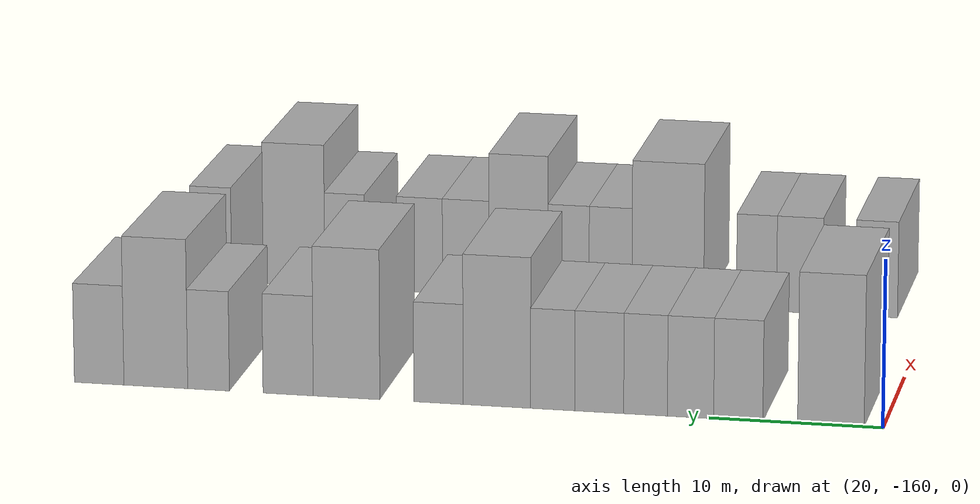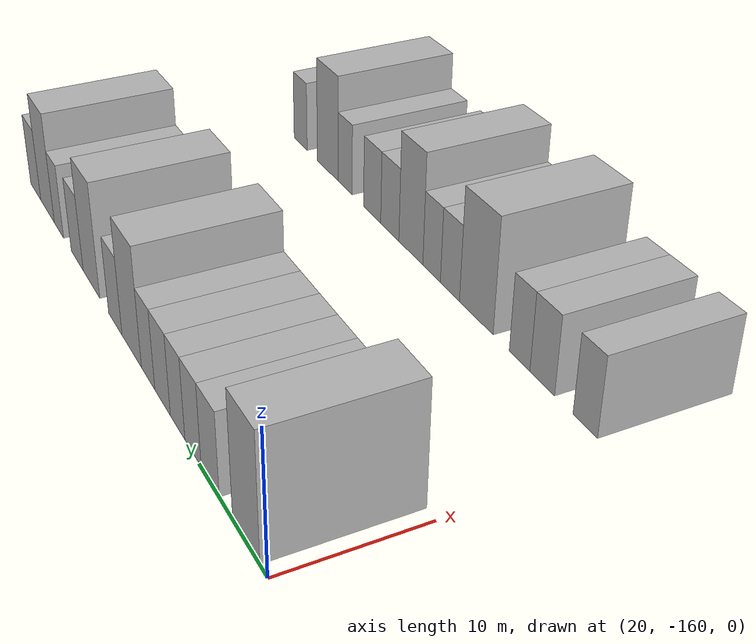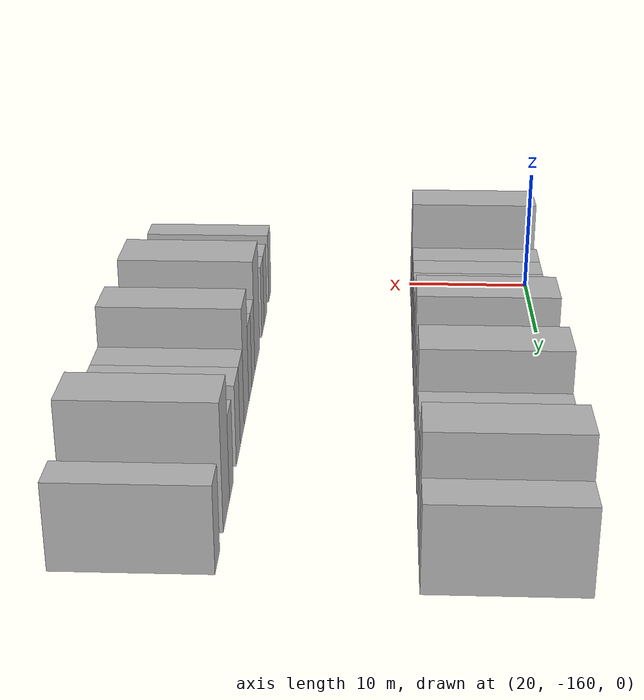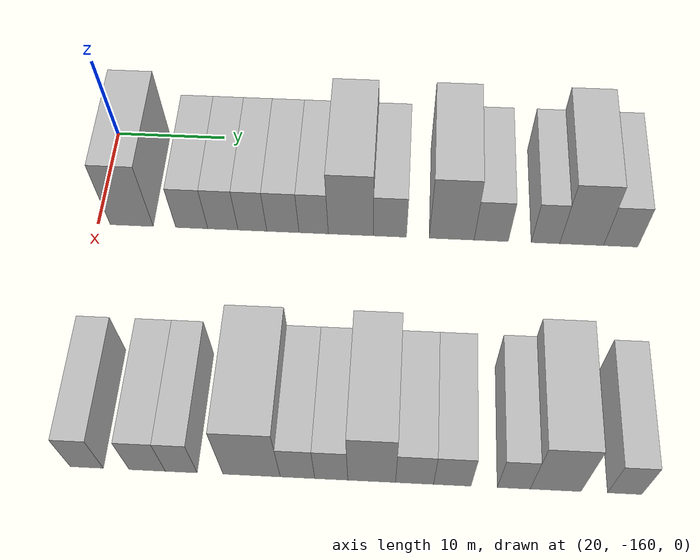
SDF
<sdf version="1.6">
 <world name="default">
  <model name="building_14">
   <static>1</static>
   <pose>25.0000 -157.0028 0 0.000000 0.000000 0.000000</pose>
   <link name="link">
    <pose>0 0 4.50 0 0 0</pose>
    <collision name="collision"><geometry><box><size>10.0000 3.8210 9.0000</size></box></geometry></collision>
    <visual name="visual">
     <cast_shadows>0</cast_shadows>
     <geometry><box><size>10.0000 3.8210 9.0000</size></box></geometry>
     <material>
      <script>
       <uri>model://HANNAS_wall/materials/scripts</uri>
       <uri>model://HANNAS_wall/materials/textures</uri>
       <name>vrc/HANNAS_wall</name>
      </script>
     </material>
    </visual>
   </link>
  </model>
  <model name="building_15">
   <static>1</static>
   <pose>25.0000 -151.6725 0 0.000000 0.000000 0.000000</pose>
   <link name="link">
    <pose>0 0 3.00 0 0 0</pose>
    <collision name="collision"><geometry><box><size>10.0000 2.8395 6.0000</size></box></geometry></collision>
    <visual name="visual">
     <cast_shadows>0</cast_shadows>
     <geometry><box><size>10.0000 2.8395 6.0000</size></box></geometry>
     <material>
      <script>
       <uri>model://HANNAS_wall/materials/scripts</uri>
       <uri>model://HANNAS_wall/materials/textures</uri>
       <name>vrc/HANNAS_wall</name>
      </script>
     </material>
    </visual>
   </link>
  </model>
  <model name="building_16">
   <static>1</static>
   <pose>25.0000 -148.9115 0 0.000000 0.000000 0.000000</pose>
   <link name="link">
    <pose>0 0 3.00 0 0 0</pose>
    <collision name="collision"><geometry><box><size>10.0000 2.6826 6.0000</size></box></geometry></collision>
    <visual name="visual">
     <cast_shadows>0</cast_shadows>
     <geometry><box><size>10.0000 2.6826 6.0000</size></box></geometry>
     <material>
      <script>
       <uri>model://HANNAS_wall/materials/scripts</uri>
       <uri>model://HANNAS_wall/materials/textures</uri>
       <name>vrc/HANNAS_wall</name>
      </script>
     </material>
    </visual>
   </link>
  </model>
  <model name="building_17">
   <static>1</static>
   <pose>25.0000 -146.3011 0 0.000000 0.000000 0.000000</pose>
   <link name="link">
    <pose>0 0 3.00 0 0 0</pose>
    <collision name="collision"><geometry><box><size>10.0000 2.5381 6.0000</size></box></geometry></collision>
    <visual name="visual">
     <cast_shadows>0</cast_shadows>
     <geometry><box><size>10.0000 2.5381 6.0000</size></box></geometry>
     <material>
      <script>
       <uri>model://HANNAS_wall/materials/scripts</uri>
       <uri>model://HANNAS_wall/materials/textures</uri>
       <name>vrc/HANNAS_wall</name>
      </script>
     </material>
    </visual>
   </link>
  </model>
  <model name="building_18">
   <static>1</static>
   <pose>25.0000 -143.6100 0 0.000000 0.000000 0.000000</pose>
   <link name="link">
    <pose>0 0 3.00 0 0 0</pose>
    <collision name="collision"><geometry><box><size>10.0000 2.8442 6.0000</size></box></geometry></collision>
    <visual name="visual">
     <cast_shadows>0</cast_shadows>
     <geometry><box><size>10.0000 2.8442 6.0000</size></box></geometry>
     <material>
      <script>
       <uri>model://HANNAS_wall/materials/scripts</uri>
       <uri>model://HANNAS_wall/materials/textures</uri>
       <name>vrc/HANNAS_wall</name>
      </script>
     </material>
    </visual>
   </link>
  </model>
  <model name="building_19">
   <static>1</static>
   <pose>25.0000 -140.8965 0 0.000000 0.000000 0.000000</pose>
   <link name="link">
    <pose>0 0 3.00 0 0 0</pose>
    <collision name="collision"><geometry><box><size>10.0000 2.5828 6.0000</size></box></geometry></collision>
    <visual name="visual">
     <cast_shadows>0</cast_shadows>
     <geometry><box><size>10.0000 2.5828 6.0000</size></box></geometry>
     <material>
      <script>
       <uri>model://HANNAS_wall/materials/scripts</uri>
       <uri>model://HANNAS_wall/materials/textures</uri>
       <name>vrc/HANNAS_wall</name>
      </script>
     </material>
    </visual>
   </link>
  </model>
  <model name="building_20">
   <static>1</static>
   <pose>25.0000 -137.6247 0 0.000000 0.000000 0.000000</pose>
   <link name="link">
    <pose>0 0 4.50 0 0 0</pose>
    <collision name="collision"><geometry><box><size>10.0000 3.9608 9.0000</size></box></geometry></collision>
    <visual name="visual">
     <cast_shadows>0</cast_shadows>
     <geometry><box><size>10.0000 3.9608 9.0000</size></box></geometry>
     <material>
      <script>
       <uri>model://HANNAS_wall/materials/scripts</uri>
       <uri>model://HANNAS_wall/materials/textures</uri>
       <name>vrc/HANNAS_wall</name>
      </script>
     </material>
    </visual>
   </link>
  </model>
  <model name="building_21">
   <static>1</static>
   <pose>25.0000 -134.1965 0 0.000000 0.000000 0.000000</pose>
   <link name="link">
    <pose>0 0 3.00 0 0 0</pose>
    <collision name="collision"><geometry><box><size>10.0000 2.8956 6.0000</size></box></geometry></collision>
    <visual name="visual">
     <cast_shadows>0</cast_shadows>
     <geometry><box><size>10.0000 2.8956 6.0000</size></box></geometry>
     <material>
      <script>
       <uri>model://HANNAS_wall/materials/scripts</uri>
       <uri>model://HANNAS_wall/materials/textures</uri>
       <name>vrc/HANNAS_wall</name>
      </script>
     </material>
    </visual>
   </link>
  </model>
  <model name="building_22">
   <static>1</static>
   <pose>25.0000 -128.7804 0 0.000000 0.000000 0.000000</pose>
   <link name="link">
    <pose>0 0 4.50 0 0 0</pose>
    <collision name="collision"><geometry><box><size>10.0000 3.9366 9.0000</size></box></geometry></collision>
    <visual name="visual">
     <cast_shadows>0</cast_shadows>
     <geometry><box><size>10.0000 3.9366 9.0000</size></box></geometry>
     <material>
      <script>
       <uri>model://HANNAS_wall/materials/scripts</uri>
       <uri>model://HANNAS_wall/materials/textures</uri>
       <name>vrc/HANNAS_wall</name>
      </script>
     </material>
    </visual>
   </link>
  </model>
  <model name="building_23">
   <static>1</static>
   <pose>25.0000 -125.3227 0 0.000000 0.000000 0.000000</pose>
   <link name="link">
    <pose>0 0 3.00 0 0 0</pose>
    <collision name="collision"><geometry><box><size>10.0000 2.9788 6.0000</size></box></geometry></collision>
    <visual name="visual">
     <cast_shadows>0</cast_shadows>
     <geometry><box><size>10.0000 2.9788 6.0000</size></box></geometry>
     <material>
      <script>
       <uri>model://HANNAS_wall/materials/scripts</uri>
       <uri>model://HANNAS_wall/materials/textures</uri>
       <name>vrc/HANNAS_wall</name>
      </script>
     </material>
    </visual>
   </link>
  </model>
  <model name="building_24">
   <static>1</static>
   <pose>25.0000 -120.5903 0 0.000000 0.000000 0.000000</pose>
   <link name="link">
    <pose>0 0 3.00 0 0 0</pose>
    <collision name="collision"><geometry><box><size>10.0000 2.4859 6.0000</size></box></geometry></collision>
    <visual name="visual">
     <cast_shadows>0</cast_shadows>
     <geometry><box><size>10.0000 2.4859 6.0000</size></box></geometry>
     <material>
      <script>
       <uri>model://HANNAS_wall/materials/scripts</uri>
       <uri>model://HANNAS_wall/materials/textures</uri>
       <name>vrc/HANNAS_wall</name>
      </script>
     </material>
    </visual>
   </link>
  </model>
  <model name="building_25">
   <static>1</static>
   <pose>25.0000 -117.4405 0 0.000000 0.000000 0.000000</pose>
   <link name="link">
    <pose>0 0 4.50 0 0 0</pose>
    <collision name="collision"><geometry><box><size>10.0000 3.8137 9.0000</size></box></geometry></collision>
    <visual name="visual">
     <cast_shadows>0</cast_shadows>
     <geometry><box><size>10.0000 3.8137 9.0000</size></box></geometry>
     <material>
      <script>
       <uri>model://HANNAS_wall/materials/scripts</uri>
       <uri>model://HANNAS_wall/materials/textures</uri>
       <name>vrc/HANNAS_wall</name>
      </script>
     </material>
    </visual>
   </link>
  </model>
  <model name="building_26">
   <static>1</static>
   <pose>25.0000 -114.0480 0 0.000000 0.000000 0.000000</pose>
   <link name="link">
    <pose>0 0 3.00 0 0 0</pose>
    <collision name="collision"><geometry><box><size>10.0000 2.9712 6.0000</size></box></geometry></collision>
    <visual name="visual">
     <cast_shadows>0</cast_shadows>
     <geometry><box><size>10.0000 2.9712 6.0000</size></box></geometry>
     <material>
      <script>
       <uri>model://HANNAS_wall/materials/scripts</uri>
       <uri>model://HANNAS_wall/materials/textures</uri>
       <name>vrc/HANNAS_wall</name>
      </script>
     </material>
    </visual>
   </link>
  </model>
  <model name="building_112">
   <static>1</static>
   <pose>47.0000 -156.7264 0 0.000000 0.000000 0.000000</pose>
   <link name="link">
    <pose>0 0 3.00 0 0 0</pose>
    <collision name="collision"><geometry><box><size>10.0000 2.5656 6.0000</size></box></geometry></collision>
    <visual name="visual">
     <cast_shadows>0</cast_shadows>
     <geometry><box><size>10.0000 2.5656 6.0000</size></box></geometry>
     <material>
      <script>
       <uri>model://HANNAS_wall/materials/scripts</uri>
       <uri>model://HANNAS_wall/materials/textures</uri>
       <name>vrc/HANNAS_wall</name>
      </script>
     </material>
    </visual>
   </link>
  </model>
  <model name="building_113">
   <static>1</static>
   <pose>47.0000 -152.0364 0 0.000000 0.000000 0.000000</pose>
   <link name="link">
    <pose>0 0 3.00 0 0 0</pose>
    <collision name="collision"><geometry><box><size>10.0000 2.8145 6.0000</size></box></geometry></collision>
    <visual name="visual">
     <cast_shadows>0</cast_shadows>
     <geometry><box><size>10.0000 2.8145 6.0000</size></box></geometry>
     <material>
      <script>
       <uri>model://HANNAS_wall/materials/scripts</uri>
       <uri>model://HANNAS_wall/materials/textures</uri>
       <name>vrc/HANNAS_wall</name>
      </script>
     </material>
    </visual>
   </link>
  </model>
  <model name="building_114">
   <static>1</static>
   <pose>47.0000 -149.4011 0 0.000000 0.000000 0.000000</pose>
   <link name="link">
    <pose>0 0 3.00 0 0 0</pose>
    <collision name="collision"><geometry><box><size>10.0000 2.4560 6.0000</size></box></geometry></collision>
    <visual name="visual">
     <cast_shadows>0</cast_shadows>
     <geometry><box><size>10.0000 2.4560 6.0000</size></box></geometry>
     <material>
      <script>
       <uri>model://HANNAS_wall/materials/scripts</uri>
       <uri>model://HANNAS_wall/materials/textures</uri>
       <name>vrc/HANNAS_wall</name>
      </script>
     </material>
    </visual>
   </link>
  </model>
  <model name="building_115">
   <static>1</static>
   <pose>47.0000 -143.9634 0 0.000000 0.000000 0.000000</pose>
   <link name="link">
    <pose>0 0 4.50 0 0 0</pose>
    <collision name="collision"><geometry><box><size>10.0000 4.4194 9.0000</size></box></geometry></collision>
    <visual name="visual">
     <cast_shadows>0</cast_shadows>
     <geometry><box><size>10.0000 4.4194 9.0000</size></box></geometry>
     <material>
      <script>
       <uri>model://HANNAS_wall/materials/scripts</uri>
       <uri>model://HANNAS_wall/materials/textures</uri>
       <name>vrc/HANNAS_wall</name>
      </script>
     </material>
    </visual>
   </link>
  </model>
  <model name="building_116">
   <static>1</static>
   <pose>47.0000 -140.4302 0 0.000000 0.000000 0.000000</pose>
   <link name="link">
    <pose>0 0 3.00 0 0 0</pose>
    <collision name="collision"><geometry><box><size>10.0000 2.6471 6.0000</size></box></geometry></collision>
    <visual name="visual">
     <cast_shadows>0</cast_shadows>
     <geometry><box><size>10.0000 2.6471 6.0000</size></box></geometry>
     <material>
      <script>
       <uri>model://HANNAS_wall/materials/scripts</uri>
       <uri>model://HANNAS_wall/materials/textures</uri>
       <name>vrc/HANNAS_wall</name>
      </script>
     </material>
    </visual>
   </link>
  </model>
  <model name="building_117">
   <static>1</static>
   <pose>47.0000 -137.8344 0 0.000000 0.000000 0.000000</pose>
   <link name="link">
    <pose>0 0 3.00 0 0 0</pose>
    <collision name="collision"><geometry><box><size>10.0000 2.5445 6.0000</size></box></geometry></collision>
    <visual name="visual">
     <cast_shadows>0</cast_shadows>
     <geometry><box><size>10.0000 2.5445 6.0000</size></box></geometry>
     <material>
      <script>
       <uri>model://HANNAS_wall/materials/scripts</uri>
       <uri>model://HANNAS_wall/materials/textures</uri>
       <name>vrc/HANNAS_wall</name>
      </script>
     </material>
    </visual>
   </link>
  </model>
  <model name="building_118">
   <static>1</static>
   <pose>47.0000 -134.7362 0 0.000000 0.000000 0.000000</pose>
   <link name="link">
    <pose>0 0 4.50 0 0 0</pose>
    <collision name="collision"><geometry><box><size>10.0000 3.6519 9.0000</size></box></geometry></collision>
    <visual name="visual">
     <cast_shadows>0</cast_shadows>
     <geometry><box><size>10.0000 3.6519 9.0000</size></box></geometry>
     <material>
      <script>
       <uri>model://HANNAS_wall/materials/scripts</uri>
       <uri>model://HANNAS_wall/materials/textures</uri>
       <name>vrc/HANNAS_wall</name>
      </script>
     </material>
    </visual>
   </link>
  </model>
  <model name="building_119">
   <static>1</static>
   <pose>47.0000 -131.4575 0 0.000000 0.000000 0.000000</pose>
   <link name="link">
    <pose>0 0 3.00 0 0 0</pose>
    <collision name="collision"><geometry><box><size>10.0000 2.9054 6.0000</size></box></geometry></collision>
    <visual name="visual">
     <cast_shadows>0</cast_shadows>
     <geometry><box><size>10.0000 2.9054 6.0000</size></box></geometry>
     <material>
      <script>
       <uri>model://HANNAS_wall/materials/scripts</uri>
       <uri>model://HANNAS_wall/materials/textures</uri>
       <name>vrc/HANNAS_wall</name>
      </script>
     </material>
    </visual>
   </link>
  </model>
  <model name="building_120">
   <static>1</static>
   <pose>47.0000 -128.5754 0 0.000000 0.000000 0.000000</pose>
   <link name="link">
    <pose>0 0 3.00 0 0 0</pose>
    <collision name="collision"><geometry><box><size>10.0000 2.8588 6.0000</size></box></geometry></collision>
    <visual name="visual">
     <cast_shadows>0</cast_shadows>
     <geometry><box><size>10.0000 2.8588 6.0000</size></box></geometry>
     <material>
      <script>
       <uri>model://HANNAS_wall/materials/scripts</uri>
       <uri>model://HANNAS_wall/materials/textures</uri>
       <name>vrc/HANNAS_wall</name>
      </script>
     </material>
    </visual>
   </link>
  </model>
  <model name="building_121">
   <static>1</static>
   <pose>47.0000 -123.8905 0 0.000000 0.000000 0.000000</pose>
   <link name="link">
    <pose>0 0 3.00 0 0 0</pose>
    <collision name="collision"><geometry><box><size>10.0000 2.5111 6.0000</size></box></geometry></collision>
    <visual name="visual">
     <cast_shadows>0</cast_shadows>
     <geometry><box><size>10.0000 2.5111 6.0000</size></box></geometry>
     <material>
      <script>
       <uri>model://HANNAS_wall/materials/scripts</uri>
       <uri>model://HANNAS_wall/materials/textures</uri>
       <name>vrc/HANNAS_wall</name>
      </script>
     </material>
    </visual>
   </link>
  </model>
  <model name="building_122">
   <static>1</static>
   <pose>47.0000 -120.6997 0 0.000000 0.000000 0.000000</pose>
   <link name="link">
    <pose>0 0 4.50 0 0 0</pose>
    <collision name="collision"><geometry><box><size>10.0000 3.8703 9.0000</size></box></geometry></collision>
    <visual name="visual">
     <cast_shadows>0</cast_shadows>
     <geometry><box><size>10.0000 3.8703 9.0000</size></box></geometry>
     <material>
      <script>
       <uri>model://HANNAS_wall/materials/scripts</uri>
       <uri>model://HANNAS_wall/materials/textures</uri>
       <name>vrc/HANNAS_wall</name>
      </script>
     </material>
    </visual>
   </link>
  </model>
  <model name="building_123">
   <static>1</static>
   <pose>47.0000 -115.4669 0 0.000000 0.000000 0.000000</pose>
   <link name="link">
    <pose>0 0 3.00 0 0 0</pose>
    <collision name="collision"><geometry><box><size>10.0000 2.5953 6.0000</size></box></geometry></collision>
    <visual name="visual">
     <cast_shadows>0</cast_shadows>
     <geometry><box><size>10.0000 2.5953 6.0000</size></box></geometry>
     <material>
      <script>
       <uri>model://HANNAS_wall/materials/scripts</uri>
       <uri>model://HANNAS_wall/materials/textures</uri>
       <name>vrc/HANNAS_wall</name>
      </script>
     </material>
    </visual>
   </link>
  </model>
 </world>
</sdf>
